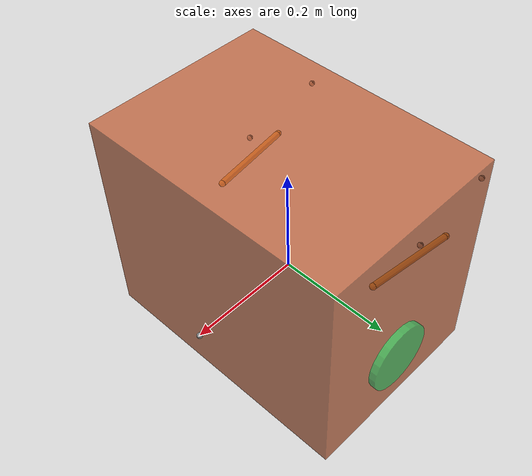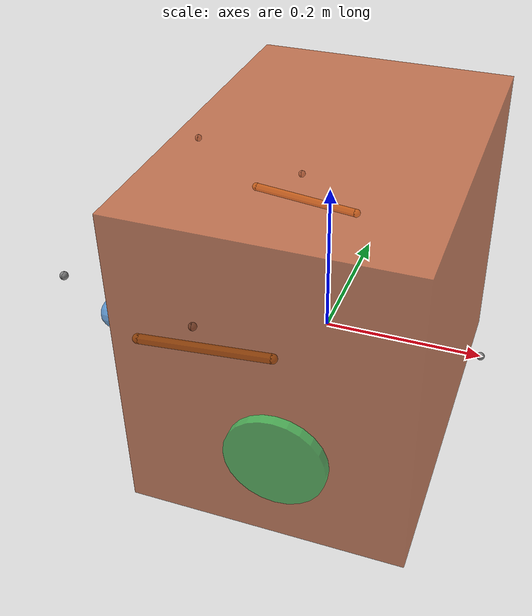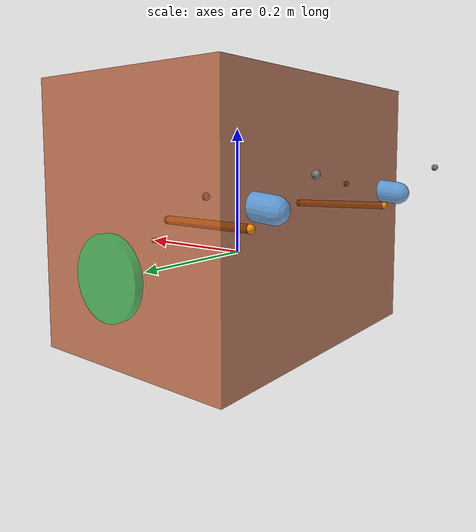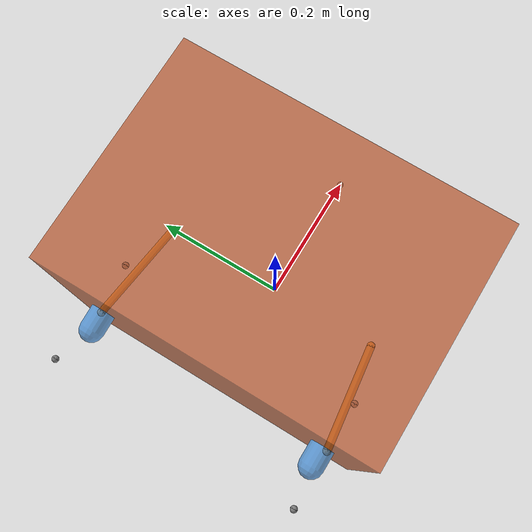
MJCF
<mujoco model="wbr_training">
  <compiler angle="radian" autolimits="true"/>
  <worldbody>
    <body name="base_link">
      <freejoint/>
      <inertial pos="-0.00424 0.00401 0.17298" mass="14" fullinertia="0.42829 0.64062 0.50639 0 0 0"/>
      <site name="imu" pos="0.2 0 0" size="0.005"/>
      <body name="llink1" pos="-7.222e-05 0.1776 0.116">
        <inertial pos="-0.10059 -0.0070347 -0.0066739" mass="0.32665" fullinertia="0.00015377 0.0015685 0.0014226 1.4531e-06 -0.00011878 -5.721e-07"/>
        <joint name="ljoint1" axis="0 -1 0" limited="false" damping="0.2" frictionloss="0" armature="0.03" actuatorfrcrange="-40 40" actuatorfrclimited="true"/>
        <site name="lspringsite1" pos="-0.0124237864 -0.0105 -0.0458464778" size="0.006" rgba="0.95 0.55 0.05 1"/>
        <site name="llink1_site1" pos="-0.0996438 0.008 -0.00843343" size="0.005"/>
        <body name="llink1_child1" pos="-0.214234 -0.008 -0.0181319">
          <inertial pos="0.1117709 0.01700516 -0.04852344" mass="0.239193401395539" fullinertia="0.0004237454 0.002361791 0.001943669 -4.110076e-06 0.0007744541 2.403068e-06"/>
          <joint name="llink1child1joint" axis="0 -1 0" limited="true" range="-1.09439510 -0.26179938" damping="0.05" frictionloss="0.4" solreflimit="0.001 1" solimplimit="0.99 0.99 0.01"/>
          <site name="lspringsite2" pos="0.04321618 0.0175 -0.02514666" size="0.006" rgba="0.95 0.55 0.05 1"/>
          <site name="llink1_site2" pos="-0.0436648 0.0145 0.0411508" size="0.005"/>
          <body name="lwlink" pos="0.233282 0.05495 -0.100477">
            <inertial pos="0.0001294144 -0.01560784 1.511712e-05" mass="0.248106367527013" fullinertia="0.0002156902 0.0003872389 0.0002149108 2.415911e-07 2.294135e-08 6.096467e-09"/>
            <joint name="lwheel" axis="0 -1 0" damping="0.02" frictionloss="0.19" armature="0.031" actuatorfrcrange="-5.2 5.2" actuatorfrclimited="true"/>
            <geom name="collision_lwheel" type="cylinder" contype="2" conaffinity="1" group="2" friction="0.8 0.005 0.0001" rgba="0.15 0.65 0.20 0.75" size="0.06 0.028" quat="0.70710678 0.70710678 0 0"/>
          </body>
        </body>
        <geom name="collision_llink1" type="capsule" contype="2" conaffinity="1" group="2" friction="0.8 0.005 0.0001" rgba="0.25 0.55 0.85 0.75" size="0.018" fromto="0 0 0 -0.2 0 -0.02"/>
      </body>
      <body name="llink4" pos="-7.222e-05 0.1906 0.116">
        <inertial pos="0.036098 -0.0065342 0.0086062" mass="0.065435" fullinertia="1.6416e-05 9.0718e-05 7.9733e-05 -7.167e-06 -1.6005e-05 -1.7087e-06"/>
        <joint name="ljoint4" axis="0 -1 0" limited="false" damping="0.2" frictionloss="0" armature="0.03" actuatorfrcrange="-40 40" actuatorfrclimited="true"/>
        <body name="llink4_child1" pos="0.0972737 0 0.023191">
          <inertial pos="-0.044207 -0.0155 -0.03917915" mass="0.0343504460745115" fullinertia="2.649209e-05 5.927163e-05 3.335204e-05 0 -2.833944e-05 0"/>
          <joint name="llink4child1joint" axis="0 -1 0" range="-3.1416 3.1416" damping="0.02" frictionloss="0.15"/>
          <body name="llink4_child2" pos="-0.088414 -0.0155 -0.0783583">
            <inertial pos="-0.07104166 0.0105 0.03411362" mass="0.0581710112657767" fullinertia="5.092828e-05 0.0002088459 0.0001582666 0 8.001763e-05 0"/>
            <joint name="llink4child2joint" axis="0 -1 0" range="-3.1416 3.1416" damping="0.02" frictionloss="0.15"/>
            <site name="llink4_site1" pos="-0.108503 0.0105 0.0467339" size="0.005"/>
            <body name="llink4_child3" pos="-0.152168 0.0135 0.0878846">
              <inertial pos="-0.05729516 -0.0135 -0.004849221" mass="0.0356582479332101" fullinertia="1.906389e-06 5.903595e-05 5.772386e-05 0 -4.758241e-06 0"/>
              <joint name="llink4child3joint" axis="0 -1 0" range="-3.1416 3.1416" damping="0.02" frictionloss="0.15"/>
              <site name="llink4_site2" pos="-0.11459 -0.0045 -0.00969844" size="0.005"/>
            </body>
          </body>
        </body>
        <geom name="collision_llink4" type="capsule" contype="2" conaffinity="1" group="2" friction="0.8 0.005 0.0001" rgba="0.25 0.55 0.85 0.75" size="0.015" fromto="0 0 0 0.1 0 0.02"/>
      </body>
      <body name="rlink1" pos="-7.222e-05 -0.1776 0.116">
        <inertial pos="-0.10059 0.0070347 -0.0066739" mass="0.32665" fullinertia="0.00015377 0.0015685 0.0014226 -1.4531e-06 -0.00011878 5.721e-07"/>
        <joint name="rjoint1" axis="0 1 0" limited="false" damping="0.2" frictionloss="0" armature="0.03" actuatorfrcrange="-40 40" actuatorfrclimited="true"/>
        <site name="rspringsite1" pos="-0.0124237864 0.0105 -0.0458464778" size="0.006" rgba="0.95 0.55 0.05 1"/>
        <site name="rlink1_site1" pos="-0.0996438 -0.008 -0.00843343" size="0.005"/>
        <body name="rlink1_child1" pos="-0.214234 -0.0175 -0.0181319">
          <inertial pos="0.1117709 0.008494837 -0.04852344" mass="0.239193401395539" fullinertia="0.0004237454 0.002361791 0.001943669 4.110076e-06 0.0007744541 -2.403068e-06"/>
          <joint name="rlink1child1joint" axis="0 1 0" limited="true" range="0.26179938 1.09439510" damping="0.05" frictionloss="0.4" solreflimit="0.001 1" solimplimit="0.99 0.99 0.01"/>
          <site name="rspringsite2" pos="0.043214 0.008 -0.0251471" size="0.006" rgba="0.95 0.55 0.05 1"/>
          <site name="rlink1_site2" pos="-0.0436648 0.011 0.0411508" size="0.005"/>
          <body name="rwlink" pos="0.233282 -0.02945 -0.100477">
            <inertial pos="0.0001294142 0.01560784 1.511721e-05" mass="0.248106347100355" fullinertia="0.0002156902 0.0003872389 0.0002149108 -2.415902e-07 2.294301e-08 -6.098415e-09"/>
            <joint name="rwheel" axis="0 1 0" damping="0.02" frictionloss="0.19" armature="0.031" actuatorfrcrange="-5.2 5.2" actuatorfrclimited="true"/>
            <geom name="collision_rwheel" type="cylinder" contype="2" conaffinity="1" group="2" friction="0.8 0.005 0.0001" rgba="0.15 0.65 0.20 0.75" size="0.06 0.028" quat="0.70710678 0.70710678 0 0"/>
          </body>
        </body>
        <geom name="collision_rlink1" type="capsule" contype="2" conaffinity="1" group="2" friction="0.8 0.005 0.0001" rgba="0.25 0.55 0.85 0.75" size="0.018" fromto="0 0 0 -0.2 0 -0.02"/>
      </body>
      <body name="rlink4" pos="-7.222e-05 -0.1906 0.116">
        <inertial pos="0.036098 0.0065342 0.0086062" mass="0.065435" fullinertia="1.6416e-05 9.0718e-05 7.9733e-05 7.167e-06 -1.6005e-05 1.7087e-06"/>
        <joint name="rjoint4" axis="0 1 0" limited="false" damping="0.2" frictionloss="0" armature="0.03" actuatorfrcrange="-40 40" actuatorfrclimited="true"/>
        <body name="rlink4_child1" pos="0.0972737 0.019 0.023191">
          <inertial pos="-0.044207 -0.0035 -0.03917915" mass="0.0343504460745115" fullinertia="2.649209e-05 5.927163e-05 3.335204e-05 0 -2.833944e-05 0"/>
          <joint name="rlink4child1joint" axis="0 1 0" range="-3.1416 3.1416" damping="0.02" frictionloss="0.15"/>
          <body name="rlink4_child2" pos="-0.088414 -0.014 -0.0783583">
            <inertial pos="-0.07104166 0 0.03411362" mass="0.0581710112657768" fullinertia="5.092828e-05 0.0002088459 0.0001582666 0 8.001763e-05 0"/>
            <joint name="rlink4child2joint" axis="0 1 0" range="-3.1416 3.1416" damping="0.02" frictionloss="0.15"/>
            <site name="rlink4_site1" pos="-0.108503 0 0.0467339" size="0.005"/>
            <body name="rlink4_child3" pos="-0.152168 0.0105 0.0878846">
              <inertial pos="-0.05729516 0 -0.004849221" mass="0.0356582479332101" fullinertia="1.906389e-06 5.903595e-05 5.772386e-05 0 -4.758241e-06 0"/>
              <joint name="rlink4child3joint" axis="0 1 0" range="-3.1416 3.1416" damping="0.02" frictionloss="0.15"/>
              <site name="rlink4_site2" pos="-0.11459 -0.009 -0.00969844" size="0.005"/>
            </body>
          </body>
        </body>
        <geom name="collision_rlink4" type="capsule" contype="2" conaffinity="1" group="2" friction="0.8 0.005 0.0001" rgba="0.25 0.55 0.85 0.75" size="0.015" fromto="0 0 0 0.1 0 0.02"/>
      </body>
      <geom name="collision_base" type="box" contype="2" conaffinity="1" group="2" friction="0.8 0.005 0.0001" rgba="0.75 0.35 0.18 0.75" pos="0 0 0.07" size="0.17 0.24 0.2"/>
    </body>
  </worldbody>
  <equality>
    <connect name="Left_loop1" site1="llink4_site1" site2="llink1_site1" solref="0.001 1" solimp="0.99 0.99 0.01 0.5 2"/>
    <connect name="Left_loop2" site1="llink4_site2" site2="llink1_site2" solref="0.001 1" solimp="0.99 0.99 0.01 0.5 2"/>
    <connect name="Right_loop1" site1="rlink4_site1" site2="rlink1_site1" solref="0.001 1" solimp="0.99 0.99 0.01 0.5 2"/>
    <connect name="Right_loop2" site1="rlink4_site2" site2="rlink1_site2" solref="0.001 1" solimp="0.99 0.99 0.01 0.5 2"/>
  </equality>
  <tendon>
    <spatial name="left_gas_spring" limited="true" range="0.12 0.195" solreflimit="0.005 1" solimplimit="0.95 0.99 0.01" width="0.006" rgba="0.95 0.55 0.05 1">
      <site site="lspringsite1"/>
      <site site="lspringsite2"/>
    </spatial>
    <spatial name="right_gas_spring" limited="true" range="0.12 0.195" solreflimit="0.005 1" solimplimit="0.95 0.99 0.01" width="0.006" rgba="0.95 0.55 0.05 1">
      <site site="rspringsite1"/>
      <site site="rspringsite2"/>
    </spatial>
  </tendon>
  <sensor>
    <framequat name="imu_quat" objtype="site" objname="imu"/>
    <accelerometer name="imu_accel" site="imu"/>
    <gyro name="imu_gyro" site="imu"/>
    <jointpos name="ljoint1_pos" joint="ljoint1"/>
    <jointpos name="ljoint4_pos" joint="ljoint4"/>
    <jointpos name="lwheel_pos" joint="lwheel"/>
    <jointpos name="rjoint1_pos" joint="rjoint1"/>
    <jointpos name="rjoint4_pos" joint="rjoint4"/>
    <jointpos name="rwheel_pos" joint="rwheel"/>
    <jointvel name="ljoint1_vel" joint="ljoint1"/>
    <jointvel name="ljoint4_vel" joint="ljoint4"/>
    <jointvel name="lwheel_vel" joint="lwheel"/>
    <jointvel name="rjoint1_vel" joint="rjoint1"/>
    <jointvel name="rjoint4_vel" joint="rjoint4"/>
    <jointvel name="rwheel_vel" joint="rwheel"/>
    <tendonpos name="left_gas_spring_length" tendon="left_gas_spring"/>
    <tendonpos name="right_gas_spring_length" tendon="right_gas_spring"/>
    <tendonvel name="left_gas_spring_velocity" tendon="left_gas_spring"/>
    <tendonvel name="right_gas_spring_velocity" tendon="right_gas_spring"/>
    <actuatorfrc name="ljoint1_tor" actuator="ljoint1_actuator"/>
    <actuatorfrc name="ljoint4_tor" actuator="ljoint4_actuator"/>
    <actuatorfrc name="lwheel_tor" actuator="lwheel_actuator"/>
    <actuatorfrc name="rjoint1_tor" actuator="rjoint1_actuator"/>
    <actuatorfrc name="rjoint4_tor" actuator="rjoint4_actuator"/>
    <actuatorfrc name="rwheel_tor" actuator="rwheel_actuator"/>
    <actuatorfrc name="left_gas_spring_force" actuator="left_gas_spring_actuator"/>
    <actuatorfrc name="right_gas_spring_force" actuator="right_gas_spring_actuator"/>
  </sensor>
  <actuator>
    <motor name="ljoint1_actuator" joint="ljoint1" gear="1" ctrlrange="-40 40" ctrllimited="true" forcerange="-40 40" forcelimited="true"/>
    <motor name="ljoint4_actuator" joint="ljoint4" gear="1" ctrlrange="-40 40" ctrllimited="true" forcerange="-40 40" forcelimited="true"/>
    <motor name="lwheel_actuator" joint="lwheel" gear="1" ctrlrange="-5.2 5.2" ctrllimited="true" forcerange="-5.2 5.2" forcelimited="true"/>
    <motor name="rjoint1_actuator" joint="rjoint1" gear="1" ctrlrange="-40 40" ctrllimited="true" forcerange="-40 40" forcelimited="true"/>
    <motor name="rjoint4_actuator" joint="rjoint4" gear="1" ctrlrange="-40 40" ctrllimited="true" forcerange="-40 40" forcelimited="true"/>
    <motor name="rwheel_actuator" joint="rwheel" gear="1" ctrlrange="-5.2 5.2" ctrllimited="true" forcerange="-5.2 5.2" forcelimited="true"/>
    <general name="left_gas_spring_actuator" tendon="left_gas_spring" gaintype="fixed" gainprm="0" biastype="affine" biasprm="34 1800 -4" forcelimited="true" forcerange="250 385"/>
    <general name="right_gas_spring_actuator" tendon="right_gas_spring" gaintype="fixed" gainprm="0" biastype="affine" biasprm="34 1800 -4" forcelimited="true" forcerange="250 385"/>
  </actuator>
  <keyframe>
    <key name="home" qpos="0 0 0.175 1 0 0 0 0.312 -0.533013847 0 -0.568 0.533013505 -0.186027678 0.533014617 -0.312 0.533013847 0 0.568 -0.533013505 0.186027678 -0.533014617"/>
  </keyframe>
</mujoco>
